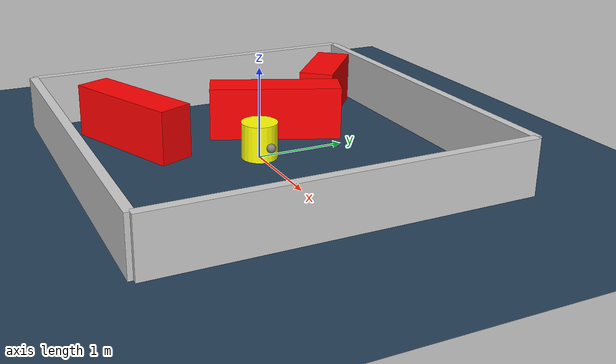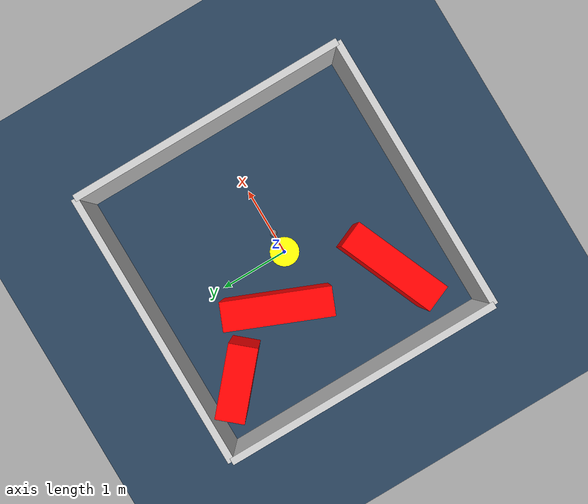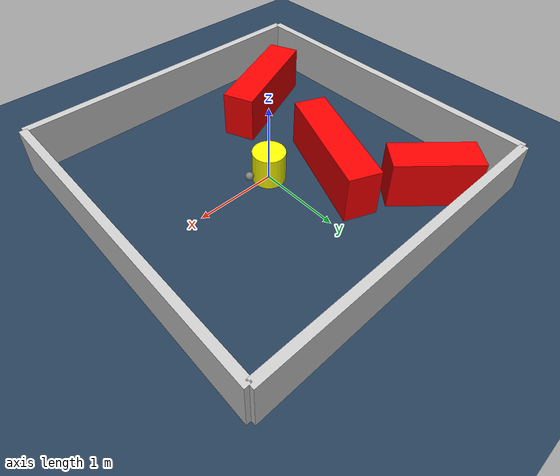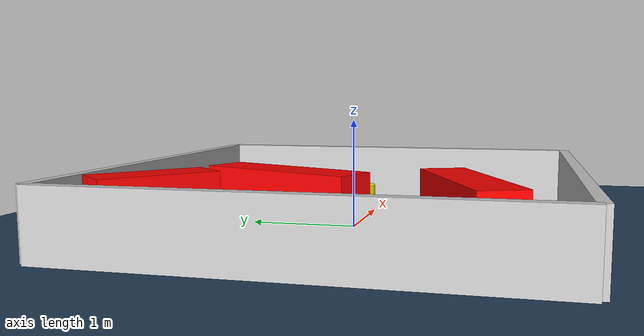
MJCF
<?xml version="1.0" ?>
<mujoco model="generated_environment">
  <option timestep="0.01" integrator="RK4" cone="elliptic"/>
  <default>
    <geom density="1"/>
  </default>
  <asset>
    <texture builtin="gradient" height="3072" rgb1="0.3 0.5 0.7" rgb2="0 0 0" type="skybox" width="512"/>
    <texture builtin="checker" height="300" mark="edge" markrgb="0.8 0.8 0.8" name="groundplane" rgb1="0.2 0.3 0.4" rgb2="0.1 0.2 0.3" type="2d" width="300"/>
    <material name="groundplane" reflectance="0.2" texrepeat="5 5" texture="groundplane" texuniform="true"/>
    <material name="robot" rgba="0.0 1.0 0.0 1"/>
  </asset>
  <worldbody>
    <light dir="0 0 -1" directional="true" pos="0 0 1.5"/>
    <geom condim="4" friction="1.0 0.005 0.001" material="groundplane" name="floor" size="0 0 0.05" type="plane"/>
    <body name="walls">
      <geom name="wall_1" condim="4" pos="-2.0 0.0 0.3" rgba="0.800000011920929 0.800000011920929 0.800000011920929 1.0" size="0.05 2.0 0.3" type="box"/>
      <geom name="wall_2" condim="4" pos="2.0 0.0 0.3" rgba="0.800000011920929 0.800000011920929 0.800000011920929 1.0" size="0.05 2.0 0.3" type="box"/>
      <geom name="wall_3" condim="4" pos="0.0 -2.0 0.3" rgba="0.800000011920929 0.800000011920929 0.800000011920929 1.0" size="2.0 0.05 0.3" type="box"/>
      <geom name="wall_4" condim="4" pos="0.0 2.0 0.3" rgba="0.800000011920929 0.800000011920929 0.800000011920929 1.0" size="2.0 0.05 0.3" type="box"/>
    </body>
    <body name="robot">
      <joint name="joint_x" type="slide" pos="0 0 0" axis="1 0 0"/>
      <joint name="joint_y" type="slide" pos="0 0 0" axis="0 1 0"/>
      <geom name="robot" type="sphere" pos="0.3 0.0 0.2" size="0.05" mass="5." friction="1.0 0.005 0.0001" condim="4" rgba="0.5 0.5 0.5 1.0"/>
      <site name="sensor_ball"/>
    </body>
    <body name="obstacle_movable_1">
      <geom name="obstacle_movable_1" condim="4" pos="0.0 0.0 0.2" euler="0 0 0.0" friction="1.0 0.005 0.001" rgba="1.0 1.0 0.0 1.0" size="0.2 0.2 0.0" type="cylinder" mass="0.1"/>
      <joint type="free"/>
    </body>
    <body name="obstacle_2_static">
      <geom name="obstacle_2_static" condim="4" pos="-1.1586398045973616 1.4230599160649582 0.3" euler="0 0 318.96416777321895" friction="1.0 0.005 0.001" rgba="1 0 0 1" size="0.5061244697502435 0.2 0.3" type="box"/>
    </body>
    <body name="obstacle_3_static">
      <geom name="obstacle_3_static" condim="4" pos="-0.596182523805822 0.4642873708649089 0.3" euler="0 0 247.53306254073718" friction="1.0 0.005 0.001" rgba="1 0 0 1" size="0.7452829970378159 0.2 0.3" type="box"/>
    </body>
    <body name="obstacle_4_static">
      <geom name="obstacle_4_static" condim="4" pos="-0.9030686679044593 -1.1311911711031053 0.3" euler="0 0 22.974083874861243" friction="1.0 0.005 0.001" rgba="1 0 0 1" size="0.716923371842705 0.2 0.3" type="box"/>
    </body>
  </worldbody>
  <actuator>
    <motor name="actuator_x" joint="joint_x" gear="1" ctrlrange="-1 1"/>
    <motor name="actuator_y" joint="joint_y" gear="1" ctrlrange="-1 1"/>
  </actuator>
</mujoco>
